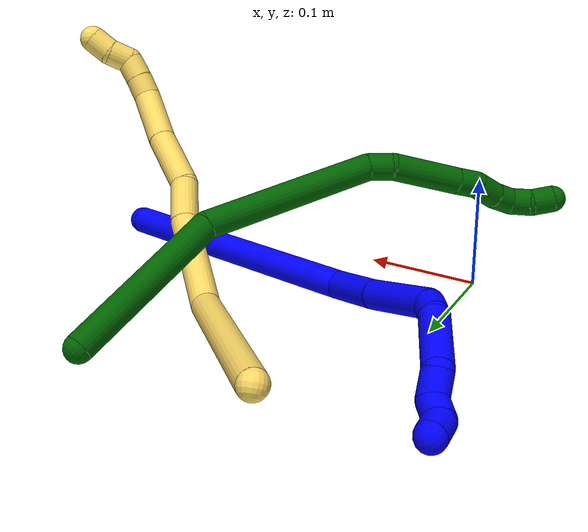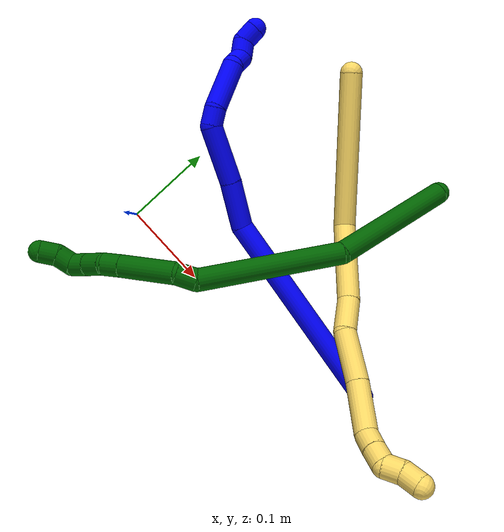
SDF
<sdf version="1.7">
 <world name="default">
  <model name="1">
   <static>0</static>
   <link name="1">
    <collision name="collision-cylinder-e_1_1_4">
     <pose>-0.113392 0.005627 -0.039256 -2.99922 -1.23436 2.94131</pose>
     <geometry><cylinder><radius>0.0125</radius><length>0.240254</length></cylinder></geometry>
     <surface>
      <friction><ode><mu>1.16</mu><mu2>1.16</mu2><slip1>0</slip1><slip2>0</slip2></ode></friction>
      <contact><ode><kp>1e+06</kp><kd>1</kd><max_vel>0</max_vel><min_depth>0.001</min_depth></ode></contact>
     </surface>
    </collision>
    <visual name="visual-cylinder-e_1_1_4">
     <pose>-0.113392 0.005627 -0.039256 -2.99922 -1.23436 2.94131</pose>
     <geometry><cylinder><radius>0.0125</radius><length>0.240254</length></cylinder></geometry>
     <material><ambient>0 0 1 1</ambient></material>
    </visual>
    <collision name="collision-cylinder-e_2_4_5">
     <pose>-0.252729 0.018969 -0.07728 -1.41261 -1.27828 1.13015</pose>
     <geometry><cylinder><radius>0.0125</radius><length>0.05419</length></cylinder></geometry>
     <surface>
      <friction><ode><mu>1.16</mu><mu2>1.16</mu2><slip1>0</slip1><slip2>0</slip2></ode></friction>
      <contact><ode><kp>1e+06</kp><kd>1</kd><max_vel>0</max_vel><min_depth>0.001</min_depth></ode></contact>
     </surface>
    </collision>
    <visual name="visual-cylinder-e_2_4_5">
     <pose>-0.252729 0.018969 -0.07728 -1.41261 -1.27828 1.13015</pose>
     <geometry><cylinder><radius>0.0125</radius><length>0.05419</length></cylinder></geometry>
     <material><ambient>0 0 1 1</ambient></material>
    </visual>
    <collision name="collision-cylinder-e_3_5_6">
     <pose>-0.311589 0.033243 -0.07485 -1.3899 -1.37098 1.19678</pose>
     <geometry><cylinder><radius>0.0125</radius><length>0.067169</length></cylinder></geometry>
     <surface>
      <friction><ode><mu>1.16</mu><mu2>1.16</mu2><slip1>0</slip1><slip2>0</slip2></ode></friction>
      <contact><ode><kp>1e+06</kp><kd>1</kd><max_vel>0</max_vel><min_depth>0.001</min_depth></ode></contact>
     </surface>
    </collision>
    <visual name="visual-cylinder-e_3_5_6">
     <pose>-0.311589 0.033243 -0.07485 -1.3899 -1.37098 1.19678</pose>
     <geometry><cylinder><radius>0.0125</radius><length>0.067169</length></cylinder></geometry>
     <material><ambient>0 0 1 1</ambient></material>
    </visual>
    <collision name="collision-cylinder-e_4_6_7">
     <pose>-0.351685 0.047298 -0.072853 -1.46472 -0.760921 0.690444</pose>
     <geometry><cylinder><radius>0.0125</radius><length>0.020823</length></cylinder></geometry>
     <surface>
      <friction><ode><mu>1.16</mu><mu2>1.16</mu2><slip1>0</slip1><slip2>0</slip2></ode></friction>
      <contact><ode><kp>1e+06</kp><kd>1</kd><max_vel>0</max_vel><min_depth>0.001</min_depth></ode></contact>
     </surface>
    </collision>
    <visual name="visual-cylinder-e_4_6_7">
     <pose>-0.351685 0.047298 -0.072853 -1.46472 -0.760921 0.690444</pose>
     <geometry><cylinder><radius>0.0125</radius><length>0.020823</length></cylinder></geometry>
     <material><ambient>0 0 1 1</ambient></material>
    </visual>
    <collision name="collision-cylinder-e_5_7_8">
     <pose>-0.372227 0.078752 -0.075316 -1.70611 -0.504887 0.574542</pose>
     <geometry><cylinder><radius>0.0125</radius><length>0.055248</length></cylinder></geometry>
     <surface>
      <friction><ode><mu>1.16</mu><mu2>1.16</mu2><slip1>0</slip1><slip2>0</slip2></ode></friction>
      <contact><ode><kp>1e+06</kp><kd>1</kd><max_vel>0</max_vel><min_depth>0.001</min_depth></ode></contact>
     </surface>
    </collision>
    <visual name="visual-cylinder-e_5_7_8">
     <pose>-0.372227 0.078752 -0.075316 -1.70611 -0.504887 0.574542</pose>
     <geometry><cylinder><radius>0.0125</radius><length>0.055248</length></cylinder></geometry>
     <material><ambient>0 0 1 1</ambient></material>
    </visual>
    <collision name="collision-cylinder-e_6_8_9">
     <pose>-0.385665 0.112403 -0.084058 -2.08531 -0.006851 0.011742</pose>
     <geometry><cylinder><radius>0.0125</radius><length>0.022274</length></cylinder></geometry>
     <surface>
      <friction><ode><mu>1.16</mu><mu2>1.16</mu2><slip1>0</slip1><slip2>0</slip2></ode></friction>
      <contact><ode><kp>1e+06</kp><kd>1</kd><max_vel>0</max_vel><min_depth>0.001</min_depth></ode></contact>
     </surface>
    </collision>
    <visual name="visual-cylinder-e_6_8_9">
     <pose>-0.385665 0.112403 -0.084058 -2.08531 -0.006851 0.011742</pose>
     <geometry><cylinder><radius>0.0125</radius><length>0.022274</length></cylinder></geometry>
     <material><ambient>0 0 1 1</ambient></material>
    </visual>
    <collision name="collision-cylinder-e_7_9_10">
     <pose>-0.392292 0.129453 -0.091319 -1.8083 -0.713495 0.884738</pose>
     <geometry><cylinder><radius>0.0125</radius><length>0.020017</length></cylinder></geometry>
     <surface>
      <friction><ode><mu>1.16</mu><mu2>1.16</mu2><slip1>0</slip1><slip2>0</slip2></ode></friction>
      <contact><ode><kp>1e+06</kp><kd>1</kd><max_vel>0</max_vel><min_depth>0.001</min_depth></ode></contact>
     </surface>
    </collision>
    <visual name="visual-cylinder-e_7_9_10">
     <pose>-0.392292 0.129453 -0.091319 -1.8083 -0.713495 0.884738</pose>
     <geometry><cylinder><radius>0.0125</radius><length>0.020017</length></cylinder></geometry>
     <material><ambient>0 0 1 1</ambient></material>
    </visual>
    <collision name="collision-cylinder-e_8_10_2">
     <pose>-0.401638 0.145985 -0.090235 -1.26834 -0.283036 0.208818</pose>
     <geometry><cylinder><radius>0.0125</radius><length>0.020025</length></cylinder></geometry>
     <surface>
      <friction><ode><mu>1.16</mu><mu2>1.16</mu2><slip1>0</slip1><slip2>0</slip2></ode></friction>
      <contact><ode><kp>1e+06</kp><kd>1</kd><max_vel>0</max_vel><min_depth>0.001</min_depth></ode></contact>
     </surface>
    </collision>
    <visual name="visual-cylinder-e_8_10_2">
     <pose>-0.401638 0.145985 -0.090235 -1.26834 -0.283036 0.208818</pose>
     <geometry><cylinder><radius>0.0125</radius><length>0.020025</length></cylinder></geometry>
     <material><ambient>0 0 1 1</ambient></material>
    </visual>
    <collision name="collision-sphere-2">
     <pose>-0.404435 0.155163 -0.087372 0 -0 0</pose>
     <geometry><sphere><radius>0.0125</radius></sphere></geometry>
     <surface>
      <friction><ode><mu>1.16</mu><mu2>1.16</mu2><slip1>0</slip1><slip2>0</slip2></ode></friction>
      <contact><ode><kp>1e+06</kp><kd>1</kd><max_vel>0</max_vel><min_depth>0.001</min_depth></ode></contact>
     </surface>
    </collision>
    <visual name="visual-sphere-2">
     <pose>-0.404435 0.155163 -0.087372 0 -0 0</pose>
     <geometry><sphere><radius>0.0125</radius></sphere></geometry>
     <material><ambient>0 0 1 1</ambient></material>
    </visual>
    <collision name="collision-sphere-10">
     <pose>-0.398842 0.136807 -0.093099 0 -0 0</pose>
     <geometry><sphere><radius>0.0125</radius></sphere></geometry>
     <surface>
      <friction><ode><mu>1.16</mu><mu2>1.16</mu2><slip1>0</slip1><slip2>0</slip2></ode></friction>
      <contact><ode><kp>1e+06</kp><kd>1</kd><max_vel>0</max_vel><min_depth>0.001</min_depth></ode></contact>
     </surface>
    </collision>
    <visual name="visual-sphere-10">
     <pose>-0.398842 0.136807 -0.093099 0 -0 0</pose>
     <geometry><sphere><radius>0.0125</radius></sphere></geometry>
     <material><ambient>0 0 1 1</ambient></material>
    </visual>
    <collision name="collision-sphere-9">
     <pose>-0.385742 0.122098 -0.089538 0 -0 0</pose>
     <geometry><sphere><radius>0.0125</radius></sphere></geometry>
     <surface>
      <friction><ode><mu>1.16</mu><mu2>1.16</mu2><slip1>0</slip1><slip2>0</slip2></ode></friction>
      <contact><ode><kp>1e+06</kp><kd>1</kd><max_vel>0</max_vel><min_depth>0.001</min_depth></ode></contact>
     </surface>
    </collision>
    <visual name="visual-sphere-9">
     <pose>-0.385742 0.122098 -0.089538 0 -0 0</pose>
     <geometry><sphere><radius>0.0125</radius></sphere></geometry>
     <material><ambient>0 0 1 1</ambient></material>
    </visual>
    <collision name="collision-sphere-4">
     <pose>-0.226785 0.011254 -0.078511 0 -0 0</pose>
     <geometry><sphere><radius>0.0125</radius></sphere></geometry>
     <surface>
      <friction><ode><mu>1.16</mu><mu2>1.16</mu2><slip1>0</slip1><slip2>0</slip2></ode></friction>
      <contact><ode><kp>1e+06</kp><kd>1</kd><max_vel>0</max_vel><min_depth>0.001</min_depth></ode></contact>
     </surface>
    </collision>
    <visual name="visual-sphere-4">
     <pose>-0.226785 0.011254 -0.078511 0 -0 0</pose>
     <geometry><sphere><radius>0.0125</radius></sphere></geometry>
     <material><ambient>0 0 1 1</ambient></material>
    </visual>
    <collision name="collision-sphere-1">
     <geometry><sphere><radius>0.0125</radius></sphere></geometry>
     <surface>
      <friction><ode><mu>1.16</mu><mu2>1.16</mu2><slip1>0</slip1><slip2>0</slip2></ode></friction>
      <contact><ode><kp>1e+06</kp><kd>1</kd><max_vel>0</max_vel><min_depth>0.001</min_depth></ode></contact>
     </surface>
    </collision>
    <visual name="visual-sphere-1">
     <geometry><sphere><radius>0.0125</radius></sphere></geometry>
     <material><ambient>0 0 1 1</ambient></material>
    </visual>
    <collision name="collision-sphere-8">
     <pose>-0.385589 0.102708 -0.078577 0 -0 0</pose>
     <geometry><sphere><radius>0.0125</radius></sphere></geometry>
     <surface>
      <friction><ode><mu>1.16</mu><mu2>1.16</mu2><slip1>0</slip1><slip2>0</slip2></ode></friction>
      <contact><ode><kp>1e+06</kp><kd>1</kd><max_vel>0</max_vel><min_depth>0.001</min_depth></ode></contact>
     </surface>
    </collision>
    <visual name="visual-sphere-8">
     <pose>-0.385589 0.102708 -0.078577 0 -0 0</pose>
     <geometry><sphere><radius>0.0125</radius></sphere></geometry>
     <material><ambient>0 0 1 1</ambient></material>
    </visual>
    <collision name="collision-sphere-5">
     <pose>-0.278673 0.026685 -0.07605 0 -0 0</pose>
     <geometry><sphere><radius>0.0125</radius></sphere></geometry>
     <surface>
      <friction><ode><mu>1.16</mu><mu2>1.16</mu2><slip1>0</slip1><slip2>0</slip2></ode></friction>
      <contact><ode><kp>1e+06</kp><kd>1</kd><max_vel>0</max_vel><min_depth>0.001</min_depth></ode></contact>
     </surface>
    </collision>
    <visual name="visual-sphere-5">
     <pose>-0.278673 0.026685 -0.07605 0 -0 0</pose>
     <geometry><sphere><radius>0.0125</radius></sphere></geometry>
     <material><ambient>0 0 1 1</ambient></material>
    </visual>
    <collision name="collision-sphere-6">
     <pose>-0.344506 0.0398 -0.073651 0 -0 0</pose>
     <geometry><sphere><radius>0.0125</radius></sphere></geometry>
     <surface>
      <friction><ode><mu>1.16</mu><mu2>1.16</mu2><slip1>0</slip1><slip2>0</slip2></ode></friction>
      <contact><ode><kp>1e+06</kp><kd>1</kd><max_vel>0</max_vel><min_depth>0.001</min_depth></ode></contact>
     </surface>
    </collision>
    <visual name="visual-sphere-6">
     <pose>-0.344506 0.0398 -0.073651 0 -0 0</pose>
     <geometry><sphere><radius>0.0125</radius></sphere></geometry>
     <material><ambient>0 0 1 1</ambient></material>
    </visual>
    <collision name="collision-sphere-7">
     <pose>-0.358865 0.054796 -0.072054 0 -0 0</pose>
     <geometry><sphere><radius>0.0125</radius></sphere></geometry>
     <surface>
      <friction><ode><mu>1.16</mu><mu2>1.16</mu2><slip1>0</slip1><slip2>0</slip2></ode></friction>
      <contact><ode><kp>1e+06</kp><kd>1</kd><max_vel>0</max_vel><min_depth>0.001</min_depth></ode></contact>
     </surface>
    </collision>
    <visual name="visual-sphere-7">
     <pose>-0.358865 0.054796 -0.072054 0 -0 0</pose>
     <geometry><sphere><radius>0.0125</radius></sphere></geometry>
     <material><ambient>0 0 1 1</ambient></material>
    </visual>
    <inertial>
     <pose>-0.228482 0.035933 -0.059664 0 -0 0</pose>
     <mass>0.5</mass>
     <inertia>
      <ixx>-0.000293</ixx>
      <ixy>0</ixy>
      <ixz>0</ixz>
      <iyy>0.001313</iyy>
      <iyz>0</iyz>
      <izz>0.001062</izz>
     </inertia>
    </inertial>
   </link>
   <pose>0.332277 0.050065 0.011498 -0.366909 0.328596 -0.201653</pose>
  </model>
  <model name="5">
   <static>0</static>
   <link name="5">
    <collision name="collision-cylinder-e_1_1_4">
     <pose>0.073504 -0.0249 -0.038829 2.57137 1.01036 2.16693</pose>
     <geometry><cylinder><radius>0.0125</radius><length>0.173558</length></cylinder></geometry>
     <surface>
      <friction><ode><mu>1.16</mu><mu2>1.16</mu2><slip1>0</slip1><slip2>0</slip2></ode></friction>
      <contact><ode><kp>1e+06</kp><kd>1</kd><max_vel>0</max_vel><min_depth>0.001</min_depth></ode></contact>
     </surface>
    </collision>
    <visual name="visual-cylinder-e_1_1_4">
     <pose>0.073504 -0.0249 -0.038829 2.57137 1.01036 2.16693</pose>
     <geometry><cylinder><radius>0.0125</radius><length>0.173558</length></cylinder></geometry>
     <material><ambient>1 0.858824 0.4 1</ambient></material>
    </visual>
    <collision name="collision-cylinder-e_2_4_5">
     <pose>0.16424 -0.066856 -0.117455 2.73672 0.378791 1.50252</pose>
     <geometry><cylinder><radius>0.0125</radius><length>0.0932</length></cylinder></geometry>
     <surface>
      <friction><ode><mu>1.16</mu><mu2>1.16</mu2><slip1>0</slip1><slip2>0</slip2></ode></friction>
      <contact><ode><kp>1e+06</kp><kd>1</kd><max_vel>0</max_vel><min_depth>0.001</min_depth></ode></contact>
     </surface>
    </collision>
    <visual name="visual-cylinder-e_2_4_5">
     <pose>0.16424 -0.066856 -0.117455 2.73672 0.378791 1.50252</pose>
     <geometry><cylinder><radius>0.0125</radius><length>0.0932</length></cylinder></geometry>
     <material><ambient>1 0.858824 0.4 1</ambient></material>
    </visual>
    <collision name="collision-cylinder-e_3_5_6">
     <pose>0.186287 -0.087804 -0.176188 2.93884 0.244052 1.75663</pose>
     <geometry><cylinder><radius>0.0125</radius><length>0.039847</length></cylinder></geometry>
     <surface>
      <friction><ode><mu>1.16</mu><mu2>1.16</mu2><slip1>0</slip1><slip2>0</slip2></ode></friction>
      <contact><ode><kp>1e+06</kp><kd>1</kd><max_vel>0</max_vel><min_depth>0.001</min_depth></ode></contact>
     </surface>
    </collision>
    <visual name="visual-cylinder-e_3_5_6">
     <pose>0.186287 -0.087804 -0.176188 2.93884 0.244052 1.75663</pose>
     <geometry><cylinder><radius>0.0125</radius><length>0.039847</length></cylinder></geometry>
     <material><ambient>1 0.858824 0.4 1</ambient></material>
    </visual>
    <collision name="collision-cylinder-e_4_6_7">
     <pose>0.200019 -0.106728 -0.21778 2.5558 0.316945 0.97462</pose>
     <geometry><cylinder><radius>0.0125</radius><length>0.057226</length></cylinder></geometry>
     <surface>
      <friction><ode><mu>1.16</mu><mu2>1.16</mu2><slip1>0</slip1><slip2>0</slip2></ode></friction>
      <contact><ode><kp>1e+06</kp><kd>1</kd><max_vel>0</max_vel><min_depth>0.001</min_depth></ode></contact>
     </surface>
    </collision>
    <visual name="visual-cylinder-e_4_6_7">
     <pose>0.200019 -0.106728 -0.21778 2.5558 0.316945 0.97462</pose>
     <geometry><cylinder><radius>0.0125</radius><length>0.057226</length></cylinder></geometry>
     <material><ambient>1 0.858824 0.4 1</ambient></material>
    </visual>
    <collision name="collision-cylinder-e_5_7_8">
     <pose>0.216407 -0.134106 -0.263963 2.65831 0.274066 1.02024</pose>
     <geometry><cylinder><radius>0.0125</radius><length>0.055202</length></cylinder></geometry>
     <surface>
      <friction><ode><mu>1.16</mu><mu2>1.16</mu2><slip1>0</slip1><slip2>0</slip2></ode></friction>
      <contact><ode><kp>1e+06</kp><kd>1</kd><max_vel>0</max_vel><min_depth>0.001</min_depth></ode></contact>
     </surface>
    </collision>
    <visual name="visual-cylinder-e_5_7_8">
     <pose>0.216407 -0.134106 -0.263963 2.65831 0.274066 1.02024</pose>
     <geometry><cylinder><radius>0.0125</radius><length>0.055202</length></cylinder></geometry>
     <material><ambient>1 0.858824 0.4 1</ambient></material>
    </visual>
    <collision name="collision-cylinder-e_6_8_9">
     <pose>0.222366 -0.152043 -0.295757 2.54702 -0.15027 -0.481874</pose>
     <geometry><cylinder><radius>0.0125</radius><length>0.020184</length></cylinder></geometry>
     <surface>
      <friction><ode><mu>1.16</mu><mu2>1.16</mu2><slip1>0</slip1><slip2>0</slip2></ode></friction>
      <contact><ode><kp>1e+06</kp><kd>1</kd><max_vel>0</max_vel><min_depth>0.001</min_depth></ode></contact>
     </surface>
    </collision>
    <visual name="visual-cylinder-e_6_8_9">
     <pose>0.222366 -0.152043 -0.295757 2.54702 -0.15027 -0.481874</pose>
     <geometry><cylinder><radius>0.0125</radius><length>0.020184</length></cylinder></geometry>
     <material><ambient>1 0.858824 0.4 1</ambient></material>
    </visual>
    <collision name="collision-cylinder-e_7_9_10">
     <pose>0.21947 -0.163778 -0.31193 2.48088 -0.137453 -0.396193</pose>
     <geometry><cylinder><radius>0.0125</radius><length>0.020221</length></cylinder></geometry>
     <surface>
      <friction><ode><mu>1.16</mu><mu2>1.16</mu2><slip1>0</slip1><slip2>0</slip2></ode></friction>
      <contact><ode><kp>1e+06</kp><kd>1</kd><max_vel>0</max_vel><min_depth>0.001</min_depth></ode></contact>
     </surface>
    </collision>
    <visual name="visual-cylinder-e_7_9_10">
     <pose>0.21947 -0.163778 -0.31193 2.48088 -0.137453 -0.396193</pose>
     <geometry><cylinder><radius>0.0125</radius><length>0.020221</length></cylinder></geometry>
     <material><ambient>1 0.858824 0.4 1</ambient></material>
    </visual>
    <collision name="collision-cylinder-e_8_10_11">
     <pose>0.215349 -0.179468 -0.321358 1.72876 -0.275887 -0.322553</pose>
     <geometry><cylinder><radius>0.0125</radius><length>0.020089</length></cylinder></geometry>
     <surface>
      <friction><ode><mu>1.16</mu><mu2>1.16</mu2><slip1>0</slip1><slip2>0</slip2></ode></friction>
      <contact><ode><kp>1e+06</kp><kd>1</kd><max_vel>0</max_vel><min_depth>0.001</min_depth></ode></contact>
     </surface>
    </collision>
    <visual name="visual-cylinder-e_8_10_11">
     <pose>0.215349 -0.179468 -0.321358 1.72876 -0.275887 -0.322553</pose>
     <geometry><cylinder><radius>0.0125</radius><length>0.020089</length></cylinder></geometry>
     <material><ambient>1 0.858824 0.4 1</ambient></material>
    </visual>
    <collision name="collision-cylinder-e_9_11_2">
     <pose>0.210757 -0.197919 -0.327571 2.05572 -0.182242 -0.300567</pose>
     <geometry><cylinder><radius>0.0125</radius><length>0.020473</length></cylinder></geometry>
     <surface>
      <friction><ode><mu>1.16</mu><mu2>1.16</mu2><slip1>0</slip1><slip2>0</slip2></ode></friction>
      <contact><ode><kp>1e+06</kp><kd>1</kd><max_vel>0</max_vel><min_depth>0.001</min_depth></ode></contact>
     </surface>
    </collision>
    <visual name="visual-cylinder-e_9_11_2">
     <pose>0.210757 -0.197919 -0.327571 2.05572 -0.182242 -0.300567</pose>
     <geometry><cylinder><radius>0.0125</radius><length>0.020473</length></cylinder></geometry>
     <material><ambient>1 0.858824 0.4 1</ambient></material>
    </visual>
    <collision name="collision-sphere-2">
     <pose>0.208902 -0.206826 -0.332263 0 -0 0</pose>
     <geometry><sphere><radius>0.0125</radius></sphere></geometry>
     <surface>
      <friction><ode><mu>1.16</mu><mu2>1.16</mu2><slip1>0</slip1><slip2>0</slip2></ode></friction>
      <contact><ode><kp>1e+06</kp><kd>1</kd><max_vel>0</max_vel><min_depth>0.001</min_depth></ode></contact>
     </surface>
    </collision>
    <visual name="visual-sphere-2">
     <pose>0.208902 -0.206826 -0.332263 0 -0 0</pose>
     <geometry><sphere><radius>0.0125</radius></sphere></geometry>
     <material><ambient>1 0.858824 0.4 1</ambient></material>
    </visual>
    <collision name="collision-sphere-11">
     <pose>0.212612 -0.189013 -0.322878 0 -0 0</pose>
     <geometry><sphere><radius>0.0125</radius></sphere></geometry>
     <surface>
      <friction><ode><mu>1.16</mu><mu2>1.16</mu2><slip1>0</slip1><slip2>0</slip2></ode></friction>
      <contact><ode><kp>1e+06</kp><kd>1</kd><max_vel>0</max_vel><min_depth>0.001</min_depth></ode></contact>
     </surface>
    </collision>
    <visual name="visual-sphere-11">
     <pose>0.212612 -0.189013 -0.322878 0 -0 0</pose>
     <geometry><sphere><radius>0.0125</radius></sphere></geometry>
     <material><ambient>1 0.858824 0.4 1</ambient></material>
    </visual>
    <collision name="collision-sphere-10">
     <pose>0.218085 -0.169924 -0.319837 0 -0 0</pose>
     <geometry><sphere><radius>0.0125</radius></sphere></geometry>
     <surface>
      <friction><ode><mu>1.16</mu><mu2>1.16</mu2><slip1>0</slip1><slip2>0</slip2></ode></friction>
      <contact><ode><kp>1e+06</kp><kd>1</kd><max_vel>0</max_vel><min_depth>0.001</min_depth></ode></contact>
     </surface>
    </collision>
    <visual name="visual-sphere-10">
     <pose>0.218085 -0.169924 -0.319837 0 -0 0</pose>
     <geometry><sphere><radius>0.0125</radius></sphere></geometry>
     <material><ambient>1 0.858824 0.4 1</ambient></material>
    </visual>
    <collision name="collision-sphere-9">
     <pose>0.220855 -0.157632 -0.304023 0 -0 0</pose>
     <geometry><sphere><radius>0.0125</radius></sphere></geometry>
     <surface>
      <friction><ode><mu>1.16</mu><mu2>1.16</mu2><slip1>0</slip1><slip2>0</slip2></ode></friction>
      <contact><ode><kp>1e+06</kp><kd>1</kd><max_vel>0</max_vel><min_depth>0.001</min_depth></ode></contact>
     </surface>
    </collision>
    <visual name="visual-sphere-9">
     <pose>0.220855 -0.157632 -0.304023 0 -0 0</pose>
     <geometry><sphere><radius>0.0125</radius></sphere></geometry>
     <material><ambient>1 0.858824 0.4 1</ambient></material>
    </visual>
    <collision name="collision-sphere-4">
     <pose>0.147008 -0.049801 -0.077658 0 -0 0</pose>
     <geometry><sphere><radius>0.0125</radius></sphere></geometry>
     <surface>
      <friction><ode><mu>1.16</mu><mu2>1.16</mu2><slip1>0</slip1><slip2>0</slip2></ode></friction>
      <contact><ode><kp>1e+06</kp><kd>1</kd><max_vel>0</max_vel><min_depth>0.001</min_depth></ode></contact>
     </surface>
    </collision>
    <visual name="visual-sphere-4">
     <pose>0.147008 -0.049801 -0.077658 0 -0 0</pose>
     <geometry><sphere><radius>0.0125</radius></sphere></geometry>
     <material><ambient>1 0.858824 0.4 1</ambient></material>
    </visual>
    <collision name="collision-sphere-1">
     <geometry><sphere><radius>0.0125</radius></sphere></geometry>
     <surface>
      <friction><ode><mu>1.16</mu><mu2>1.16</mu2><slip1>0</slip1><slip2>0</slip2></ode></friction>
      <contact><ode><kp>1e+06</kp><kd>1</kd><max_vel>0</max_vel><min_depth>0.001</min_depth></ode></contact>
     </surface>
    </collision>
    <visual name="visual-sphere-1">
     <geometry><sphere><radius>0.0125</radius></sphere></geometry>
     <material><ambient>1 0.858824 0.4 1</ambient></material>
    </visual>
    <collision name="collision-sphere-8">
     <pose>0.223877 -0.146453 -0.287491 0 -0 0</pose>
     <geometry><sphere><radius>0.0125</radius></sphere></geometry>
     <surface>
      <friction><ode><mu>1.16</mu><mu2>1.16</mu2><slip1>0</slip1><slip2>0</slip2></ode></friction>
      <contact><ode><kp>1e+06</kp><kd>1</kd><max_vel>0</max_vel><min_depth>0.001</min_depth></ode></contact>
     </surface>
    </collision>
    <visual name="visual-sphere-8">
     <pose>0.223877 -0.146453 -0.287491 0 -0 0</pose>
     <geometry><sphere><radius>0.0125</radius></sphere></geometry>
     <material><ambient>1 0.858824 0.4 1</ambient></material>
    </visual>
    <collision name="collision-sphere-5">
     <pose>0.181473 -0.08391 -0.157251 0 -0 0</pose>
     <geometry><sphere><radius>0.0125</radius></sphere></geometry>
     <surface>
      <friction><ode><mu>1.16</mu><mu2>1.16</mu2><slip1>0</slip1><slip2>0</slip2></ode></friction>
      <contact><ode><kp>1e+06</kp><kd>1</kd><max_vel>0</max_vel><min_depth>0.001</min_depth></ode></contact>
     </surface>
    </collision>
    <visual name="visual-sphere-5">
     <pose>0.181473 -0.08391 -0.157251 0 -0 0</pose>
     <geometry><sphere><radius>0.0125</radius></sphere></geometry>
     <material><ambient>1 0.858824 0.4 1</ambient></material>
    </visual>
    <collision name="collision-sphere-6">
     <pose>0.191102 -0.091697 -0.195125 0 -0 0</pose>
     <geometry><sphere><radius>0.0125</radius></sphere></geometry>
     <surface>
      <friction><ode><mu>1.16</mu><mu2>1.16</mu2><slip1>0</slip1><slip2>0</slip2></ode></friction>
      <contact><ode><kp>1e+06</kp><kd>1</kd><max_vel>0</max_vel><min_depth>0.001</min_depth></ode></contact>
     </surface>
    </collision>
    <visual name="visual-sphere-6">
     <pose>0.191102 -0.091697 -0.195125 0 -0 0</pose>
     <geometry><sphere><radius>0.0125</radius></sphere></geometry>
     <material><ambient>1 0.858824 0.4 1</ambient></material>
    </visual>
    <collision name="collision-sphere-7">
     <pose>0.208937 -0.121759 -0.240435 0 -0 0</pose>
     <geometry><sphere><radius>0.0125</radius></sphere></geometry>
     <surface>
      <friction><ode><mu>1.16</mu><mu2>1.16</mu2><slip1>0</slip1><slip2>0</slip2></ode></friction>
      <contact><ode><kp>1e+06</kp><kd>1</kd><max_vel>0</max_vel><min_depth>0.001</min_depth></ode></contact>
     </surface>
    </collision>
    <visual name="visual-sphere-7">
     <pose>0.208937 -0.121759 -0.240435 0 -0 0</pose>
     <geometry><sphere><radius>0.0125</radius></sphere></geometry>
     <material><ambient>1 0.858824 0.4 1</ambient></material>
    </visual>
    <inertial>
     <pose>0.152894 -0.0832 -0.154359 0 -0 0</pose>
     <mass>0.5</mass>
     <inertia>
      <ixx>0.000203</ixx>
      <ixy>0</ixy>
      <ixz>0</ixz>
      <iyy>0.000646</iyy>
      <iyz>0</iyz>
      <izz>-0.000262</izz>
     </inertia>
    </inertial>
   </link>
   <pose>0.050795 0.287237 0.040012 -2.93349 0.698803 -0.960565</pose>
  </model>
  <model name="6">
   <static>0</static>
   <link name="6">
    <collision name="collision-cylinder-e_1_1_4">
     <pose>-0.003677 0.009608 -0.073328 -3.01131 -0.049676 0.727747</pose>
     <geometry><cylinder><radius>0.0125</radius><length>0.148093</length></cylinder></geometry>
     <surface>
      <friction><ode><mu>1.16</mu><mu2>1.16</mu2><slip1>0</slip1><slip2>0</slip2></ode></friction>
      <contact><ode><kp>1e+06</kp><kd>1</kd><max_vel>0</max_vel><min_depth>0.001</min_depth></ode></contact>
     </surface>
    </collision>
    <visual name="visual-cylinder-e_1_1_4">
     <pose>-0.003677 0.009608 -0.073328 -3.01131 -0.049676 0.727747</pose>
     <geometry><cylinder><radius>0.0125</radius><length>0.148093</length></cylinder></geometry>
     <material><ambient>0 0.392157 0.003922 1</ambient></material>
    </visual>
    <collision name="collision-cylinder-e_2_4_5">
     <pose>-0.029364 0.002007 -0.221811 2.91649 -0.278087 -1.78283</pose>
     <geometry><cylinder><radius>0.0125</radius><length>0.160358</length></cylinder></geometry>
     <surface>
      <friction><ode><mu>1.16</mu><mu2>1.16</mu2><slip1>0</slip1><slip2>0</slip2></ode></friction>
      <contact><ode><kp>1e+06</kp><kd>1</kd><max_vel>0</max_vel><min_depth>0.001</min_depth></ode></contact>
     </surface>
    </collision>
    <visual name="visual-cylinder-e_2_4_5">
     <pose>-0.029364 0.002007 -0.221811 2.91649 -0.278087 -1.78283</pose>
     <geometry><cylinder><radius>0.0125</radius><length>0.160358</length></cylinder></geometry>
     <material><ambient>0 0.392157 0.003922 1</ambient></material>
    </visual>
    <collision name="collision-cylinder-e_3_5_6">
     <pose>-0.054489 -0.022705 -0.304943 2.38684 -0.276996 -0.676314</pose>
     <geometry><cylinder><radius>0.0125</radius><length>0.022774</length></cylinder></geometry>
     <surface>
      <friction><ode><mu>1.16</mu><mu2>1.16</mu2><slip1>0</slip1><slip2>0</slip2></ode></friction>
      <contact><ode><kp>1e+06</kp><kd>1</kd><max_vel>0</max_vel><min_depth>0.001</min_depth></ode></contact>
     </surface>
    </collision>
    <visual name="visual-cylinder-e_3_5_6">
     <pose>-0.054489 -0.022705 -0.304943 2.38684 -0.276996 -0.676314</pose>
     <geometry><cylinder><radius>0.0125</radius><length>0.022774</length></cylinder></geometry>
     <material><ambient>0 0.392157 0.003922 1</ambient></material>
    </visual>
    <collision name="collision-cylinder-e_4_6_7">
     <pose>-0.076678 -0.046021 -0.333047 2.47565 -0.640493 -1.52893</pose>
     <geometry><cylinder><radius>0.0125</radius><length>0.063841</length></cylinder></geometry>
     <surface>
      <friction><ode><mu>1.16</mu><mu2>1.16</mu2><slip1>0</slip1><slip2>0</slip2></ode></friction>
      <contact><ode><kp>1e+06</kp><kd>1</kd><max_vel>0</max_vel><min_depth>0.001</min_depth></ode></contact>
     </surface>
    </collision>
    <visual name="visual-cylinder-e_4_6_7">
     <pose>-0.076678 -0.046021 -0.333047 2.47565 -0.640493 -1.52893</pose>
     <geometry><cylinder><radius>0.0125</radius><length>0.063841</length></cylinder></geometry>
     <material><ambient>0 0.392157 0.003922 1</ambient></material>
    </visual>
    <collision name="collision-cylinder-e_5_7_8">
     <pose>-0.101885 -0.066798 -0.359935 2.50824 -0.63112 -1.56701</pose>
     <geometry><cylinder><radius>0.0125</radius><length>0.020783</length></cylinder></geometry>
     <surface>
      <friction><ode><mu>1.16</mu><mu2>1.16</mu2><slip1>0</slip1><slip2>0</slip2></ode></friction>
      <contact><ode><kp>1e+06</kp><kd>1</kd><max_vel>0</max_vel><min_depth>0.001</min_depth></ode></contact>
     </surface>
    </collision>
    <visual name="visual-cylinder-e_5_7_8">
     <pose>-0.101885 -0.066798 -0.359935 2.50824 -0.63112 -1.56701</pose>
     <geometry><cylinder><radius>0.0125</radius><length>0.020783</length></cylinder></geometry>
     <material><ambient>0 0.392157 0.003922 1</ambient></material>
    </visual>
    <collision name="collision-cylinder-e_6_8_9">
     <pose>-0.118012 -0.075694 -0.372187 2.52036 -0.97674 -2.05459</pose>
     <geometry><cylinder><radius>0.0125</radius><length>0.024124</length></cylinder></geometry>
     <surface>
      <friction><ode><mu>1.16</mu><mu2>1.16</mu2><slip1>0</slip1><slip2>0</slip2></ode></friction>
      <contact><ode><kp>1e+06</kp><kd>1</kd><max_vel>0</max_vel><min_depth>0.001</min_depth></ode></contact>
     </surface>
    </collision>
    <visual name="visual-cylinder-e_6_8_9">
     <pose>-0.118012 -0.075694 -0.372187 2.52036 -0.97674 -2.05459</pose>
     <geometry><cylinder><radius>0.0125</radius><length>0.024124</length></cylinder></geometry>
     <material><ambient>0 0.392157 0.003922 1</ambient></material>
    </visual>
    <collision name="collision-cylinder-e_7_9_10">
     <pose>-0.135339 -0.083151 -0.383497 2.59659 -0.8226 -2.002</pose>
     <geometry><cylinder><radius>0.0125</radius><length>0.020006</length></cylinder></geometry>
     <surface>
      <friction><ode><mu>1.16</mu><mu2>1.16</mu2><slip1>0</slip1><slip2>0</slip2></ode></friction>
      <contact><ode><kp>1e+06</kp><kd>1</kd><max_vel>0</max_vel><min_depth>0.001</min_depth></ode></contact>
     </surface>
    </collision>
    <visual name="visual-cylinder-e_7_9_10">
     <pose>-0.135339 -0.083151 -0.383497 2.59659 -0.8226 -2.002</pose>
     <geometry><cylinder><radius>0.0125</radius><length>0.020006</length></cylinder></geometry>
     <material><ambient>0 0.392157 0.003922 1</ambient></material>
    </visual>
    <collision name="collision-cylinder-e_8_10_11">
     <pose>-0.144308 -0.094951 -0.394708 2.14848 -0.164369 -0.301728</pose>
     <geometry><cylinder><radius>0.0125</radius><length>0.020018</length></cylinder></geometry>
     <surface>
      <friction><ode><mu>1.16</mu><mu2>1.16</mu2><slip1>0</slip1><slip2>0</slip2></ode></friction>
      <contact><ode><kp>1e+06</kp><kd>1</kd><max_vel>0</max_vel><min_depth>0.001</min_depth></ode></contact>
     </surface>
    </collision>
    <visual name="visual-cylinder-e_8_10_11">
     <pose>-0.144308 -0.094951 -0.394708 2.14848 -0.164369 -0.301728</pose>
     <geometry><cylinder><radius>0.0125</radius><length>0.020018</length></cylinder></geometry>
     <material><ambient>0 0.392157 0.003922 1</ambient></material>
    </visual>
    <collision name="collision-cylinder-e_9_11_2">
     <pose>-0.147858 -0.108834 -0.408156 2.53319 -0.192358 -0.596291</pose>
     <geometry><cylinder><radius>0.0125</radius><length>0.020002</length></cylinder></geometry>
     <surface>
      <friction><ode><mu>1.16</mu><mu2>1.16</mu2><slip1>0</slip1><slip2>0</slip2></ode></friction>
      <contact><ode><kp>1e+06</kp><kd>1</kd><max_vel>0</max_vel><min_depth>0.001</min_depth></ode></contact>
     </surface>
    </collision>
    <visual name="visual-cylinder-e_9_11_2">
     <pose>-0.147858 -0.108834 -0.408156 2.53319 -0.192358 -0.596291</pose>
     <geometry><cylinder><radius>0.0125</radius><length>0.020002</length></cylinder></geometry>
     <material><ambient>0 0.392157 0.003922 1</ambient></material>
    </visual>
    <collision name="collision-sphere-2">
     <pose>-0.14977 -0.114445 -0.416211 0 -0 0</pose>
     <geometry><sphere><radius>0.0125</radius></sphere></geometry>
     <surface>
      <friction><ode><mu>1.16</mu><mu2>1.16</mu2><slip1>0</slip1><slip2>0</slip2></ode></friction>
      <contact><ode><kp>1e+06</kp><kd>1</kd><max_vel>0</max_vel><min_depth>0.001</min_depth></ode></contact>
     </surface>
    </collision>
    <visual name="visual-sphere-2">
     <pose>-0.14977 -0.114445 -0.416211 0 -0 0</pose>
     <geometry><sphere><radius>0.0125</radius></sphere></geometry>
     <material><ambient>0 0.392157 0.003922 1</ambient></material>
    </visual>
    <collision name="collision-sphere-11">
     <pose>-0.145946 -0.103223 -0.4001 0 -0 0</pose>
     <geometry><sphere><radius>0.0125</radius></sphere></geometry>
     <surface>
      <friction><ode><mu>1.16</mu><mu2>1.16</mu2><slip1>0</slip1><slip2>0</slip2></ode></friction>
      <contact><ode><kp>1e+06</kp><kd>1</kd><max_vel>0</max_vel><min_depth>0.001</min_depth></ode></contact>
     </surface>
    </collision>
    <visual name="visual-sphere-11">
     <pose>-0.145946 -0.103223 -0.4001 0 -0 0</pose>
     <geometry><sphere><radius>0.0125</radius></sphere></geometry>
     <material><ambient>0 0.392157 0.003922 1</ambient></material>
    </visual>
    <collision name="collision-sphere-10">
     <pose>-0.14267 -0.086679 -0.389316 0 -0 0</pose>
     <geometry><sphere><radius>0.0125</radius></sphere></geometry>
     <surface>
      <friction><ode><mu>1.16</mu><mu2>1.16</mu2><slip1>0</slip1><slip2>0</slip2></ode></friction>
      <contact><ode><kp>1e+06</kp><kd>1</kd><max_vel>0</max_vel><min_depth>0.001</min_depth></ode></contact>
     </surface>
    </collision>
    <visual name="visual-sphere-10">
     <pose>-0.14267 -0.086679 -0.389316 0 -0 0</pose>
     <geometry><sphere><radius>0.0125</radius></sphere></geometry>
     <material><ambient>0 0.392157 0.003922 1</ambient></material>
    </visual>
    <collision name="collision-sphere-9">
     <pose>-0.128007 -0.079623 -0.377677 0 -0 0</pose>
     <geometry><sphere><radius>0.0125</radius></sphere></geometry>
     <surface>
      <friction><ode><mu>1.16</mu><mu2>1.16</mu2><slip1>0</slip1><slip2>0</slip2></ode></friction>
      <contact><ode><kp>1e+06</kp><kd>1</kd><max_vel>0</max_vel><min_depth>0.001</min_depth></ode></contact>
     </surface>
    </collision>
    <visual name="visual-sphere-9">
     <pose>-0.128007 -0.079623 -0.377677 0 -0 0</pose>
     <geometry><sphere><radius>0.0125</radius></sphere></geometry>
     <material><ambient>0 0.392157 0.003922 1</ambient></material>
    </visual>
    <collision name="collision-sphere-4">
     <pose>-0.007354 0.019216 -0.146657 0 -0 0</pose>
     <geometry><sphere><radius>0.0125</radius></sphere></geometry>
     <surface>
      <friction><ode><mu>1.16</mu><mu2>1.16</mu2><slip1>0</slip1><slip2>0</slip2></ode></friction>
      <contact><ode><kp>1e+06</kp><kd>1</kd><max_vel>0</max_vel><min_depth>0.001</min_depth></ode></contact>
     </surface>
    </collision>
    <visual name="visual-sphere-4">
     <pose>-0.007354 0.019216 -0.146657 0 -0 0</pose>
     <geometry><sphere><radius>0.0125</radius></sphere></geometry>
     <material><ambient>0 0.392157 0.003922 1</ambient></material>
    </visual>
    <collision name="collision-sphere-1">
     <geometry><sphere><radius>0.0125</radius></sphere></geometry>
     <surface>
      <friction><ode><mu>1.16</mu><mu2>1.16</mu2><slip1>0</slip1><slip2>0</slip2></ode></friction>
      <contact><ode><kp>1e+06</kp><kd>1</kd><max_vel>0</max_vel><min_depth>0.001</min_depth></ode></contact>
     </surface>
    </collision>
    <visual name="visual-sphere-1">
     <geometry><sphere><radius>0.0125</radius></sphere></geometry>
     <material><ambient>0 0.392157 0.003922 1</ambient></material>
    </visual>
    <collision name="collision-sphere-8">
     <pose>-0.108016 -0.071764 -0.366697 0 -0 0</pose>
     <geometry><sphere><radius>0.0125</radius></sphere></geometry>
     <surface>
      <friction><ode><mu>1.16</mu><mu2>1.16</mu2><slip1>0</slip1><slip2>0</slip2></ode></friction>
      <contact><ode><kp>1e+06</kp><kd>1</kd><max_vel>0</max_vel><min_depth>0.001</min_depth></ode></contact>
     </surface>
    </collision>
    <visual name="visual-sphere-8">
     <pose>-0.108016 -0.071764 -0.366697 0 -0 0</pose>
     <geometry><sphere><radius>0.0125</radius></sphere></geometry>
     <material><ambient>0 0.392157 0.003922 1</ambient></material>
    </visual>
    <collision name="collision-sphere-5">
     <pose>-0.051375 -0.015201 -0.296964 0 -0 0</pose>
     <geometry><sphere><radius>0.0125</radius></sphere></geometry>
     <surface>
      <friction><ode><mu>1.16</mu><mu2>1.16</mu2><slip1>0</slip1><slip2>0</slip2></ode></friction>
      <contact><ode><kp>1e+06</kp><kd>1</kd><max_vel>0</max_vel><min_depth>0.001</min_depth></ode></contact>
     </surface>
    </collision>
    <visual name="visual-sphere-5">
     <pose>-0.051375 -0.015201 -0.296964 0 -0 0</pose>
     <geometry><sphere><radius>0.0125</radius></sphere></geometry>
     <material><ambient>0 0.392157 0.003922 1</ambient></material>
    </visual>
    <collision name="collision-sphere-6">
     <pose>-0.057603 -0.030209 -0.312922 0 -0 0</pose>
     <geometry><sphere><radius>0.0125</radius></sphere></geometry>
     <surface>
      <friction><ode><mu>1.16</mu><mu2>1.16</mu2><slip1>0</slip1><slip2>0</slip2></ode></friction>
      <contact><ode><kp>1e+06</kp><kd>1</kd><max_vel>0</max_vel><min_depth>0.001</min_depth></ode></contact>
     </surface>
    </collision>
    <visual name="visual-sphere-6">
     <pose>-0.057603 -0.030209 -0.312922 0 -0 0</pose>
     <geometry><sphere><radius>0.0125</radius></sphere></geometry>
     <material><ambient>0 0.392157 0.003922 1</ambient></material>
    </visual>
    <collision name="collision-sphere-7">
     <pose>-0.095753 -0.061833 -0.353172 0 -0 0</pose>
     <geometry><sphere><radius>0.0125</radius></sphere></geometry>
     <surface>
      <friction><ode><mu>1.16</mu><mu2>1.16</mu2><slip1>0</slip1><slip2>0</slip2></ode></friction>
      <contact><ode><kp>1e+06</kp><kd>1</kd><max_vel>0</max_vel><min_depth>0.001</min_depth></ode></contact>
     </surface>
    </collision>
    <visual name="visual-sphere-7">
     <pose>-0.095753 -0.061833 -0.353172 0 -0 0</pose>
     <geometry><sphere><radius>0.0125</radius></sphere></geometry>
     <material><ambient>0 0.392157 0.003922 1</ambient></material>
    </visual>
    <inertial>
     <pose>-0.049815 -0.021332 -0.229665 0 -0 0</pose>
     <mass>0.5</mass>
     <inertia>
      <ixx>-4.3e-05</ixx>
      <ixy>0</ixy>
      <ixz>0</ixz>
      <iyy>-0.000281</iyy>
      <iyz>0</iyz>
      <izz>0.000153</izz>
     </inertia>
    </inertial>
   </link>
   <pose>0.219141 0.273669 0.01245 2.99674 -1.11306 1.3635</pose>
  </model>
 </world>
</sdf>
